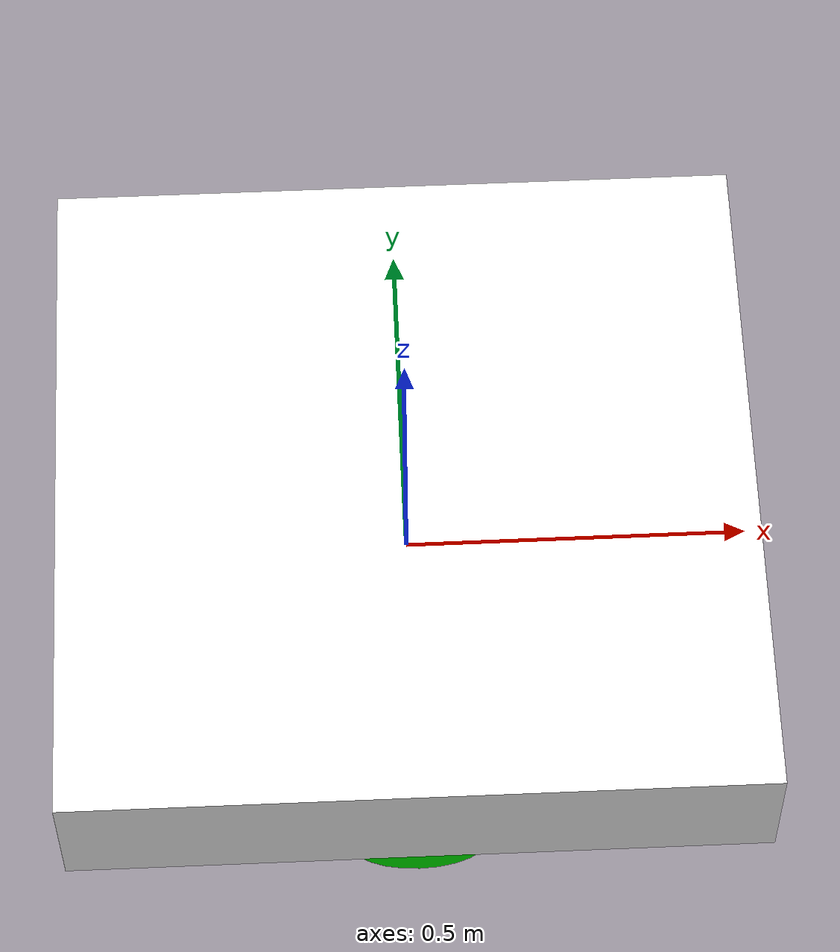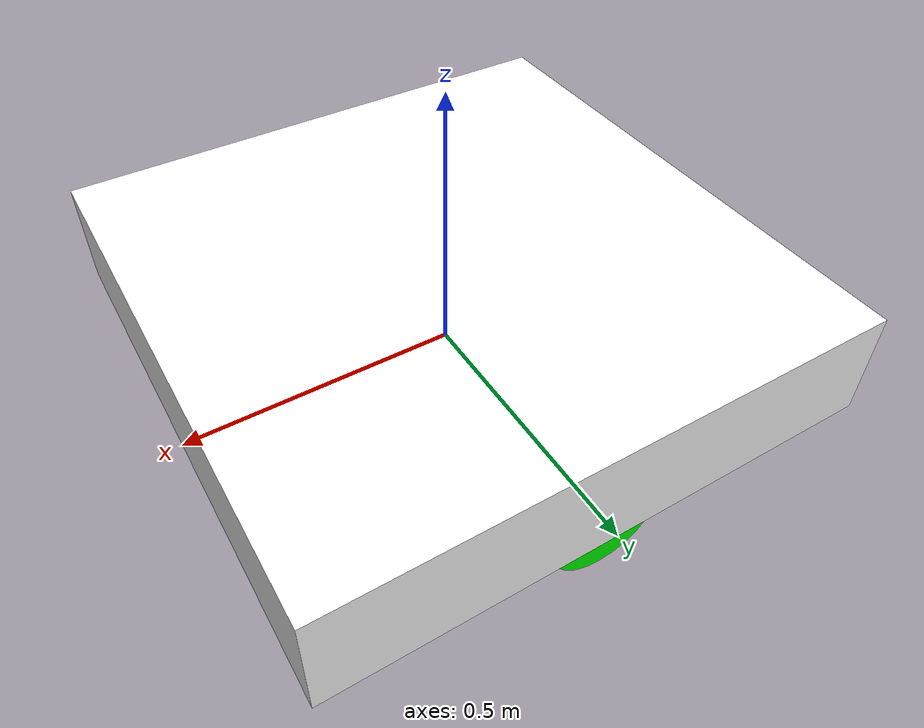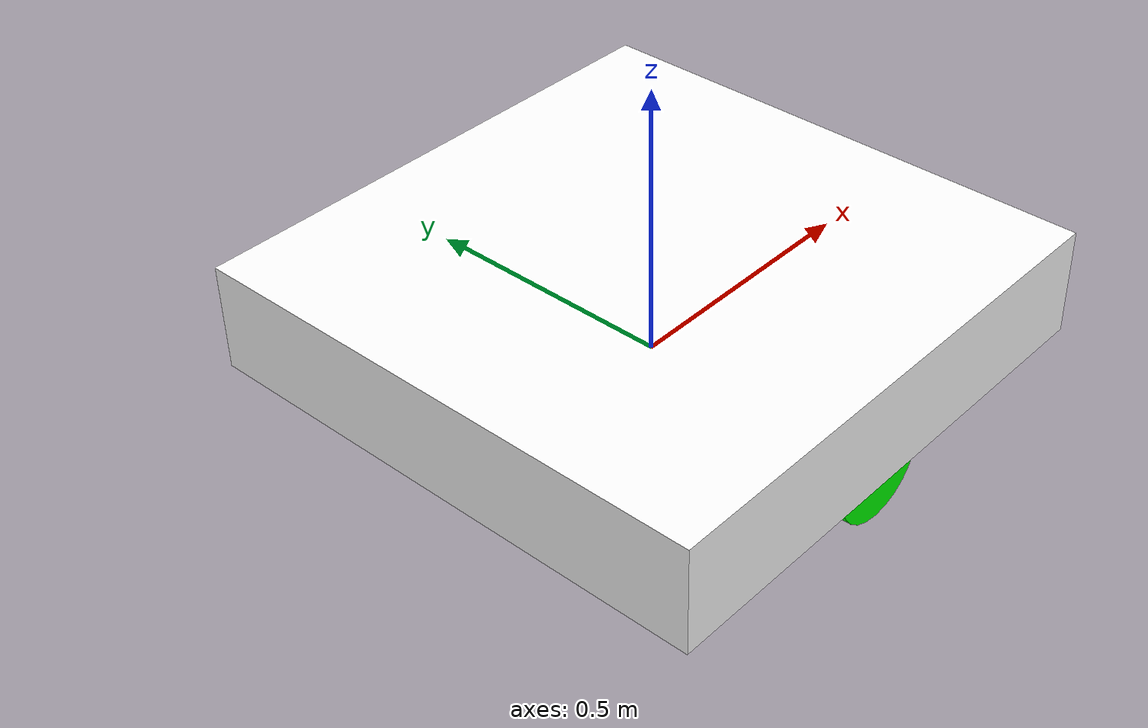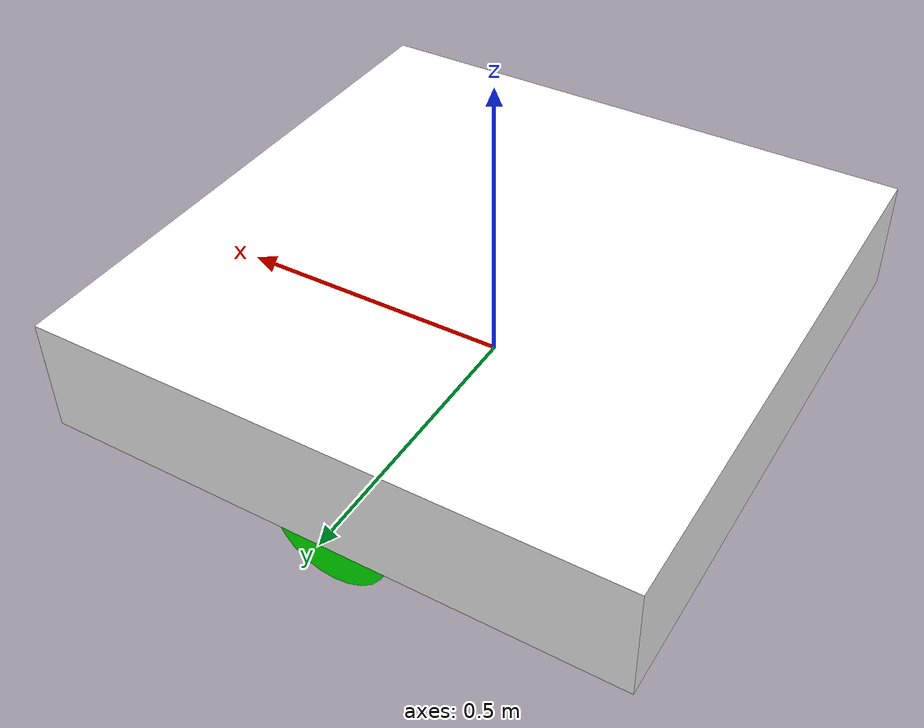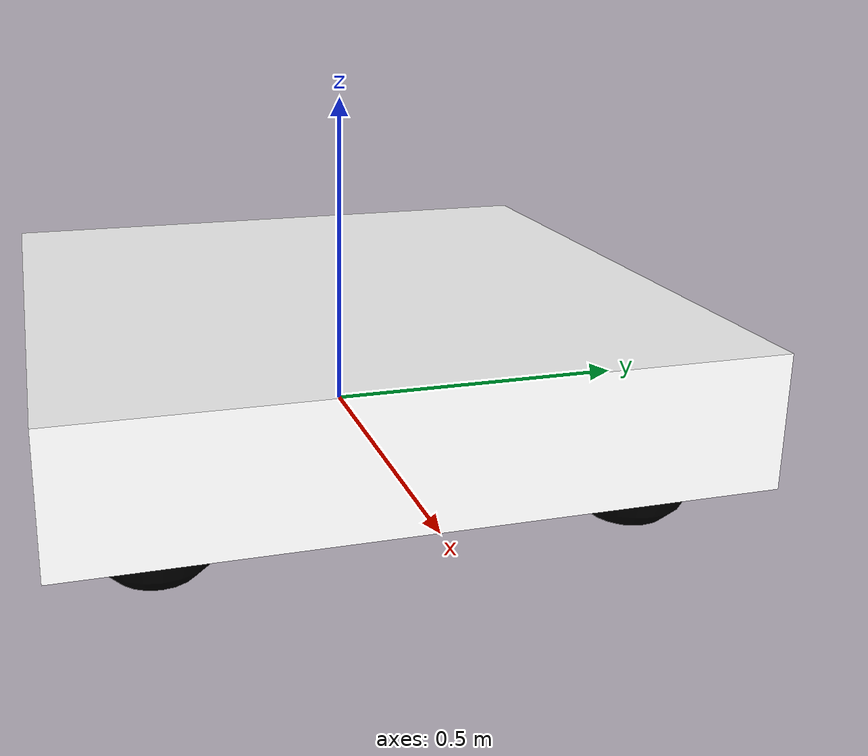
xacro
<?xml version="1.0"?>
<robot xmlns:xacro="http://www.ros.org/wiki/xacro">

  <xacro:include filename="inertial_macros.xacro" />

  <!-- Colors -->
  <material name="white">
    <color rgba="1 1 1 1" />
  </material>
  <material name="orange">
    <color rgba="1 .3 0.1 1" />
  </material>
  <material name="blue">
    <color rgba="0 1 0 1" />
  </material>
  <material name="black">
    <color rgba="0 0 0 1" />
  </material>
  <material name="red">
    <color rgba="1 0 0 1" />
  </material>

  <!-- Links & Joints -->
  <link name="base_link">

  </link>

  <joint name="base_footprint_joint" type="fixed">
    <parent link="base_link"/>
    <child link="base_footprint"/>
    <origin xyz="0 0 0" rpy="0 0 0"/>
  </joint>

  <link name="base_footprint">
  </link>

  <!-- Chassis link -->
  <joint name="chassis_joint" type="fixed">
    <parent link="base_link" />
    <child link="chassis_link" />
    <origin xyz="0.0 0.0 0.0" />
  </joint>

  <link name="chassis_link">
    <visual>
      <geometry>
        <box size="1.0 1.0 0.2" />
      </geometry>
      <origin xyz="0 0 0.1" />
      <material name="white"></material>
    </visual>
    <collision>
      <geometry>
        <box size="1.0 1.0 0.2" />
      </geometry>
      <origin xyz="0.0 0 0.1" />
      <material name="white"></material>
    </collision>
    <xacro:inertial_box mass="50.0" x="1.0" y="1.0" z="0.2">
      <origin xyz="0 0 0.1" rpy="0 0 0" />
    </xacro:inertial_box>
  </link>

  <gazebo reference="chassis_link">
    <material>Gazebo/Black</material>
  </gazebo>

  <!-- left wheel link -->

  <joint name="left_wheel_joint" type="continuous">
    <parent link="base_link" />
    <child link="left_wheel_link" />
    <origin xyz="0.0 0.45 0.0" rpy="-${pi/2} 0.0 0.0" />
    <axis xyz="0.0 0.0 1.0" />
    <joint_properties damping="1.0" friction="1.0" />
  </joint>

  <link name="left_wheel_link">
    <visual>
      <material name="blue"></material>
      <geometry>
        <cylinder radius="0.1" length="0.05" />
      </geometry>
    </visual>
    <collision>
    <surface>
   <contact>
    <ode>
     <kp>1.0</kp>
     <kd>0.01</kd>
     <max_vel>0.0</max_vel>
     <min_depth>0.001</min_depth>
    </ode>
   </contact>
   <friction>
    <ode>
     <mu>100.9</mu>
     <mu2>100.9</mu2>
     <slip1> 0</slip1>
     <slip2>0</slip2>
    </ode>
   </friction>
  </surface>
      <material name="blue"></material>
      <geometry>
        <cylinder radius="0.1" length="0.05" />
      </geometry>
    </collision>
    <xacro:inertial_cylinder mass="0.1" length="0.1" radius="0.05">
      <origin xyz="0 0 0" rpy="0 0 0" />
    </xacro:inertial_cylinder>
  </link>

  <gazebo reference="left_wheel_link">
    <material>Gazebo/Blue</material>
  </gazebo>

  <!-- right wheel link -->

  <joint name="right_wheel_joint" type="continuous">
    <parent link="base_link" />
    <child link="right_wheel_link" />
    <origin xyz="0.0 -0.45 0.0" rpy="${pi/2} 0.0 0.0" />
    <axis xyz="0.0 0.0 -1.0" />
    <joint_properties damping="1.0" friction="1.0" />

  </joint>

  <link name="right_wheel_link">
    <visual>
      <material name="blue"></material>
      <geometry>
        <cylinder radius="0.1" length="0.05" />
      </geometry>
    </visual>
    <collision>
    <surface>
   <contact>
    <ode>
     <kp>1.0</kp>
     <kd>0.01</kd>
     <max_vel>0.0</max_vel>
     <min_depth>0.001</min_depth>
    </ode>
   </contact>
   <friction>
    <ode>
     <mu>100.9</mu>
     <mu2>100.9</mu2>
     <slip1> 0</slip1>
     <slip2>0</slip2>
    </ode>
   </friction>
  </surface>
      <material name="blue"></material>
      <geometry>
        <cylinder radius="0.1" length="0.05" />
      </geometry>
    </collision>

    <xacro:inertial_cylinder mass="0.1" length="0.1" radius="0.05">
      <origin xyz="0 0 0" rpy="0 0 0" />
    </xacro:inertial_cylinder>
  </link>

  <gazebo reference="right_wheel_link">
    <material>Gazebo/Blue</material>
  </gazebo>

    <gazebo reference="right_wheel_link">

     <mu>100.9</mu>
     <mu2>100.9</mu2>
    <maxVel>0.0</maxVel>
    <minDepth>0.0001</minDepth>
  </gazebo>

    <gazebo reference="left_wheel_link">

     <mu>100.9</mu>
     <mu2>100.9</mu2>
    <maxVel>0.0</maxVel>
    <minDepth>0.0001</minDepth>
  </gazebo>

  <!-- caster wheels -->
  <!-- caster wheel first -->

  <joint name="caster_wheel_1_joint" type="fixed">
    <parent link="chassis_link" />
    <child link="caster_wheel_1_link" />
    <origin xyz="0.35 0.35 0.0001" />
  </joint>

  <link name="caster_wheel_1_link">
    <visual>
      <geometry>
        <sphere radius="0.1" />
      </geometry>
      <material name="black"></material>
    </visual>
    <collision>
      <geometry>
        <sphere radius="0.1" />
      </geometry>
      <material name="black"></material>
    </collision>
    <xacro:inertial_sphere mass="0.1" radius="0.1">
      <origin xyz="0 0 0" rpy="0 0 0" />
    </xacro:inertial_sphere>
  </link>

  <gazebo reference="caster_wheel_1_link">
    <material>Gazebo/Black</material>
  </gazebo>

  <!-- caster wheel second -->
  <joint name="caster_wheel_2_joint" type="fixed">
    <parent link="chassis_link" />
    <child link="caster_wheel_2_link" />
    <origin xyz="0.35 -0.35 0.0001" />
  </joint>

  <link name="caster_wheel_2_link">
    <visual>
      <geometry>
        <sphere radius="0.1" />
      </geometry>
      <material name="black"></material>
    </visual>
    <collision>
      <geometry>
        <sphere radius="0.1" />
      </geometry>
      <material name="black"></material>
    </collision>
    <xacro:inertial_sphere mass="0.1" radius="0.1">
      <origin xyz="0 0 0" rpy="0 0 0" />
    </xacro:inertial_sphere>
  </link>

  <gazebo reference="caster_wheel_2_link">
    <material>Gazebo/Black</material>
  </gazebo>

  <!-- caster wheel third -->
  <joint name="caster_wheel_3_joint" type="fixed">
    <parent link="chassis_link" />
    <child link="caster_wheel_3_link" />
    <origin xyz="-0.35 0.35 0.0001" />
  </joint>

  <link name="caster_wheel_3_link">
    <visual>
      <geometry>
        <sphere radius="0.1" />
      </geometry>
      <material name="black"></material>
    </visual>
    <collision>
      <geometry>
        <sphere radius="0.1" />
      </geometry>
      <material name="black"></material>
    </collision>
    <xacro:inertial_sphere mass="0.1" radius="0.1">
      <origin xyz="0 0 0" rpy="0 0 0" />
    </xacro:inertial_sphere>
  </link>

  <gazebo reference="caster_wheel_3_link">
    <material>Gazebo/Black</material>
  </gazebo>

  <!-- caster wheel fourth -->
  <joint name="caster_wheel_4_joint" type="fixed">
    <parent link="chassis_link" />
    <child link="caster_wheel_4_link" />
    <origin xyz="-0.35 -0.35 0.0001" />
  </joint>

  <link name="caster_wheel_4_link">
    <visual>
      <geometry>
        <sphere radius="0.1" />
      </geometry>
      <material name="black"></material>
    </visual>
    <collision>
      <geometry>
        <sphere radius="0.1" />
      </geometry>
      <material name="black"></material>
    </collision>
    <xacro:inertial_sphere mass="0.1" radius="0.1">
      <origin xyz="0 0 0" rpy="0 0 0" />
    </xacro:inertial_sphere>
  </link>

  <gazebo reference="caster_wheel_4_link">
    <material>Gazebo/Black</material>
  </gazebo>

</robot>
